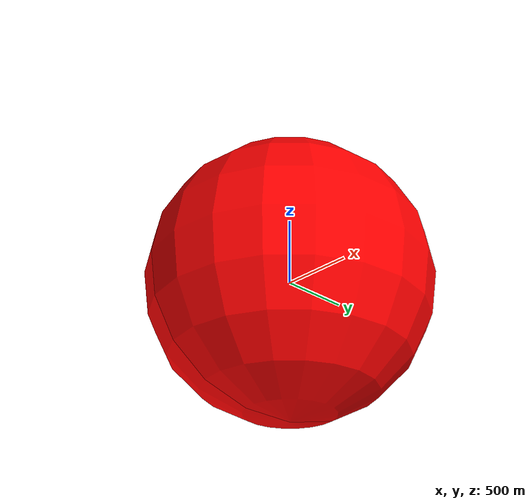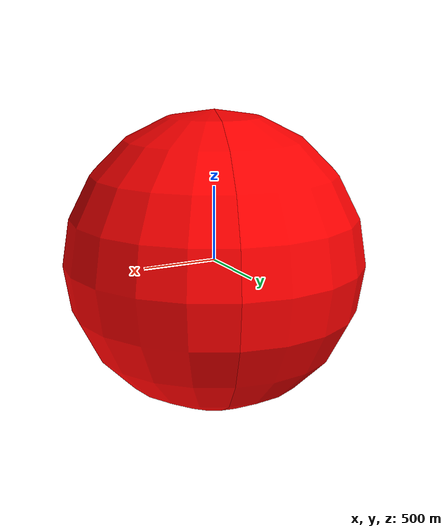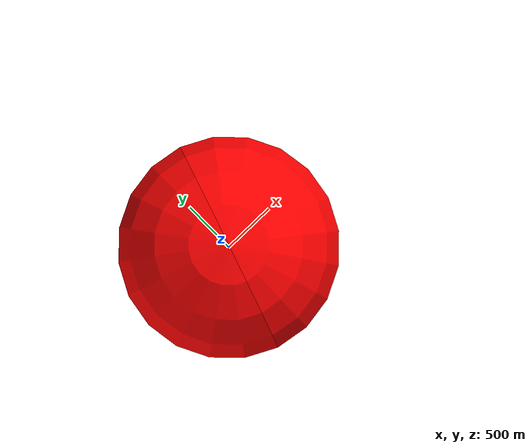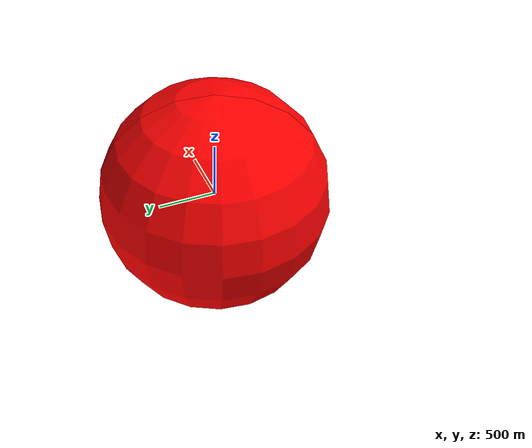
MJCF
<mujoco>
  <option gravity="0 0 -9.81" />
  <worldbody>
    <body name="object_3" pos="1 0 2" />
    <body name="object_1" pos="0.5 0 1.5">
      <geom type="box" size="0.1 0.4 0.1" pos="0 0.2 0" density="1" rgba="0.7 0.7 0.7 1" />
      <geom type="box" size="0.4 0.1 0.1" pos="0.2 0 0" density="1" rgba="0.7 0.7 0.7 1" />
      <joint type="ball" name="object_1_joint" limited="false" />
    </body>
  <body name="support_point" pos="0.7 0.0 2.0"><geom type="sphere" size="1000.0" rgba="1 0 0 1" /></body><body name="support_point" pos="0.3 0.2 2.0"><geom type="sphere" size="1000.0" rgba="1 0 0 1" /></body></worldbody>
<joint name="joint_object_2_object_1" type="revolute" body1="object_2" body2="object_1" /></mujoco>
